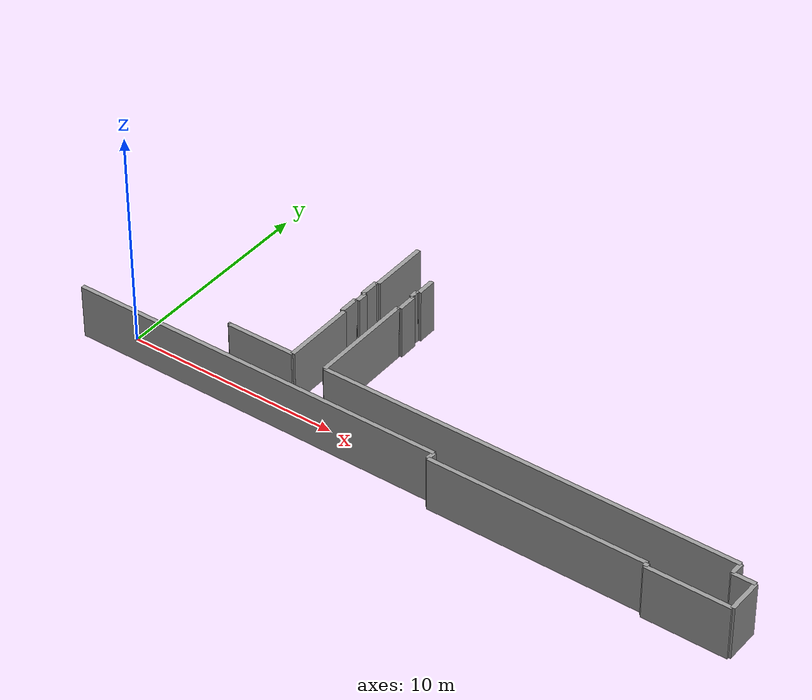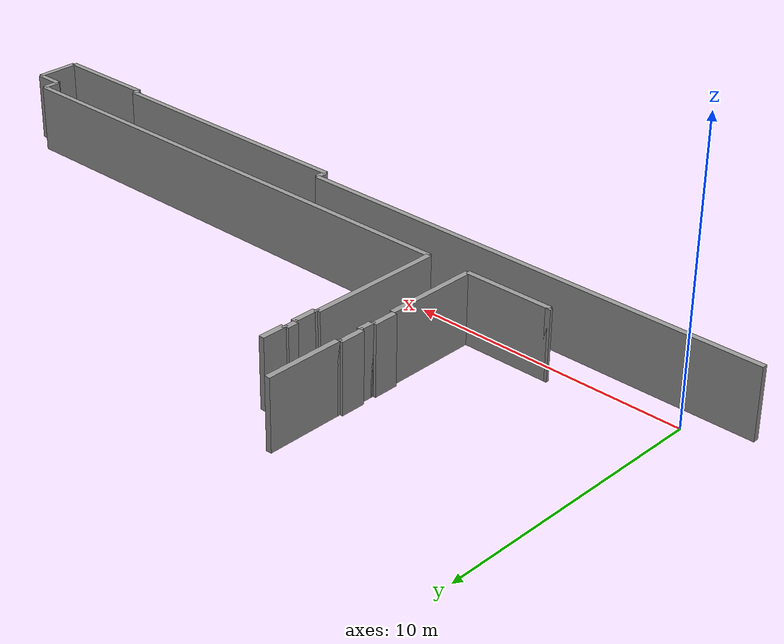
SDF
<sdf version="1.4">
 <model name="Levine">
  <link name="Wall_20">
   <collision name="Wall_20_Collision">
    <geometry><box><size>4.9 0.2 2.5</size></box></geometry>
    <pose>0 0 1.25 0 0 0</pose>
   </collision>
   <visual name="Wall_20_Visual">
    <pose>0 0 1.25 0 0 0</pose>
    <geometry><box><size>4.9 0.2 2.5</size></box></geometry>
    <material>
     <script><uri>file://media/materials/scripts/gazebo.material</uri><name>Gazebo/Grey</name></script>
    </material>
   </visual>
   <velocity_decay><linear>0</linear><angular>0</angular></velocity_decay>
   <pose>9.3 3.05 0 0 0 1.57079632679</pose>
  </link>
  <link name="Wall_21">
   <collision name="Wall_21_Collision">
    <geometry><box><size>0.1 0.2 2.5</size></box></geometry>
    <pose>0 0 1.25 0 0 0</pose>
   </collision>
   <visual name="Wall_21_Visual">
    <pose>0 0 1.25 0 0 0</pose>
    <geometry><box><size>0.1 0.2 2.5</size></box></geometry>
    <material>
     <script><uri>file://media/materials/scripts/gazebo.material</uri><name>Gazebo/Grey</name></script>
    </material>
   </visual>
   <velocity_decay><linear>0</linear><angular>0</angular></velocity_decay>
   <pose>9.35 5.5 0 0 0 0.0</pose>
  </link>
  <link name="Wall_22">
   <collision name="Wall_22_Collision">
    <geometry><box><size>0.9 0.2 2.5</size></box></geometry>
    <pose>0 0 1.25 0 0 0</pose>
   </collision>
   <visual name="Wall_22_Visual">
    <pose>0 0 1.25 0 0 0</pose>
    <geometry><box><size>0.9 0.2 2.5</size></box></geometry>
    <material>
     <script><uri>file://media/materials/scripts/gazebo.material</uri><name>Gazebo/Grey</name></script>
    </material>
   </visual>
   <velocity_decay><linear>0</linear><angular>0</angular></velocity_decay>
   <pose>9.4 5.95 0 0 0 1.57079632679</pose>
  </link>
  <link name="Wall_23">
   <collision name="Wall_23_Collision">
    <geometry><box><size>0.1 0.2 2.5</size></box></geometry>
    <pose>0 0 1.25 0 0 0</pose>
   </collision>
   <visual name="Wall_23_Visual">
    <pose>0 0 1.25 0 0 0</pose>
    <geometry><box><size>0.1 0.2 2.5</size></box></geometry>
    <material>
     <script><uri>file://media/materials/scripts/gazebo.material</uri><name>Gazebo/Grey</name></script>
    </material>
   </visual>
   <velocity_decay><linear>0</linear><angular>0</angular></velocity_decay>
   <pose>9.35 6.4 0 0 0 3.14159265359</pose>
  </link>
  <link name="Wall_24">
   <collision name="Wall_24_Collision">
    <geometry><box><size>0.4 0.2 2.5</size></box></geometry>
    <pose>0 0 1.25 0 0 0</pose>
   </collision>
   <visual name="Wall_24_Visual">
    <pose>0 0 1.25 0 0 0</pose>
    <geometry><box><size>0.4 0.2 2.5</size></box></geometry>
    <material>
     <script><uri>file://media/materials/scripts/gazebo.material</uri><name>Gazebo/Grey</name></script>
    </material>
   </visual>
   <velocity_decay><linear>0</linear><angular>0</angular></velocity_decay>
   <pose>9.3 6.6 0 0 0 1.57079632679</pose>
  </link>
  <link name="Wall_25">
   <collision name="Wall_25_Collision">
    <geometry><box><size>0.1 0.2 2.5</size></box></geometry>
    <pose>0 0 1.25 0 0 0</pose>
   </collision>
   <visual name="Wall_25_Visual">
    <pose>0 0 1.25 0 0 0</pose>
    <geometry><box><size>0.1 0.2 2.5</size></box></geometry>
    <material>
     <script><uri>file://media/materials/scripts/gazebo.material</uri><name>Gazebo/Grey</name></script>
    </material>
   </visual>
   <velocity_decay><linear>0</linear><angular>0</angular></velocity_decay>
   <pose>9.35 6.8 0 0 0 0.0</pose>
  </link>
  <link name="Wall_26">
   <collision name="Wall_26_Collision">
    <geometry><box><size>0.9 0.2 2.5</size></box></geometry>
    <pose>0 0 1.25 0 0 0</pose>
   </collision>
   <visual name="Wall_26_Visual">
    <pose>0 0 1.25 0 0 0</pose>
    <geometry><box><size>0.9 0.2 2.5</size></box></geometry>
    <material>
     <script><uri>file://media/materials/scripts/gazebo.material</uri><name>Gazebo/Grey</name></script>
    </material>
   </visual>
   <velocity_decay><linear>0</linear><angular>0</angular></velocity_decay>
   <pose>9.4 7.25 0 0 0 1.57079632679</pose>
  </link>
  <link name="Wall_47">
   <collision name="Wall_47_Collision">
    <geometry><box><size>17.7 0.2 2.5</size></box></geometry>
    <pose>0 0 1.25 0 0 0</pose>
   </collision>
   <visual name="Wall_47_Visual">
    <pose>0 0 1.25 0 0 0</pose>
    <geometry><box><size>17.7 0.2 2.5</size></box></geometry>
    <material>
     <script><uri>file://media/materials/scripts/gazebo.material</uri><name>Gazebo/Grey</name></script>
    </material>
   </visual>
   <velocity_decay><linear>0</linear><angular>0</angular></velocity_decay>
   <pose>6.95 -1.0 0 0 0 0.0</pose>
  </link>
  <link name="Wall_48">
   <collision name="Wall_48_Collision">
    <geometry><box><size>0.4 0.2 2.5</size></box></geometry>
    <pose>0 0 1.25 0 0 0</pose>
   </collision>
   <visual name="Wall_48_Visual">
    <pose>0 0 1.25 0 0 0</pose>
    <geometry><box><size>0.4 0.2 2.5</size></box></geometry>
    <material>
     <script><uri>file://media/materials/scripts/gazebo.material</uri><name>Gazebo/Grey</name></script>
    </material>
   </visual>
   <velocity_decay><linear>0</linear><angular>0</angular></velocity_decay>
   <pose>15.8 -1.2 0 0 0 -1.57079632679</pose>
  </link>
  <link name="Wall_49">
   <collision name="Wall_49_Collision">
    <geometry><box><size>10.0 0.2 2.5</size></box></geometry>
    <pose>0 0 1.25 0 0 0</pose>
   </collision>
   <visual name="Wall_49_Visual">
    <pose>0 0 1.25 0 0 0</pose>
    <geometry><box><size>10.0 0.2 2.5</size></box></geometry>
    <material>
     <script><uri>file://media/materials/scripts/gazebo.material</uri><name>Gazebo/Grey</name></script>
    </material>
   </visual>
   <velocity_decay><linear>0</linear><angular>0</angular></velocity_decay>
   <pose>20.8 -1.4 0 0 0 0.0</pose>
  </link>
  <link name="Wall_50">
   <collision name="Wall_50_Collision">
    <geometry><box><size>0.2 0.2 2.5</size></box></geometry>
    <pose>0 0 1.25 0 0 0</pose>
   </collision>
   <visual name="Wall_50_Visual">
    <pose>0 0 1.25 0 0 0</pose>
    <geometry><box><size>0.2 0.2 2.5</size></box></geometry>
    <material>
     <script><uri>file://media/materials/scripts/gazebo.material</uri><name>Gazebo/Grey</name></script>
    </material>
   </visual>
   <velocity_decay><linear>0</linear><angular>0</angular></velocity_decay>
   <pose>25.8 -1.5 0 0 0 -1.57079632679</pose>
  </link>
  <link name="Wall_51">
   <collision name="Wall_51_Collision">
    <geometry><box><size>3.8 0.2 2.5</size></box></geometry>
    <pose>0 0 1.25 0 0 0</pose>
   </collision>
   <visual name="Wall_51_Visual">
    <pose>0 0 1.25 0 0 0</pose>
    <geometry><box><size>3.8 0.2 2.5</size></box></geometry>
    <material>
     <script><uri>file://media/materials/scripts/gazebo.material</uri><name>Gazebo/Grey</name></script>
    </material>
   </visual>
   <velocity_decay><linear>0</linear><angular>0</angular></velocity_decay>
   <pose>27.7 -1.6 0 0 0 0.0</pose>
  </link>
  <link name="Wall_52">
   <collision name="Wall_52_Collision">
    <geometry><box><size>1.6 0.2 2.5</size></box></geometry>
    <pose>0 0 1.25 0 0 0</pose>
   </collision>
   <visual name="Wall_52_Visual">
    <pose>0 0 1.25 0 0 0</pose>
    <geometry><box><size>1.6 0.2 2.5</size></box></geometry>
    <material>
     <script><uri>file://media/materials/scripts/gazebo.material</uri><name>Gazebo/Grey</name></script>
    </material>
   </visual>
   <velocity_decay><linear>0</linear><angular>0</angular></velocity_decay>
   <pose>29.6 -0.8 0 0 0 1.57079632679</pose>
  </link>
  <link name="Wall_53">
   <collision name="Wall_53_Collision">
    <geometry><box><size>1.0 0.2 2.5</size></box></geometry>
    <pose>0 0 1.25 0 0 0</pose>
   </collision>
   <visual name="Wall_53_Visual">
    <pose>0 0 1.25 0 0 0</pose>
    <geometry><box><size>1.0 0.2 2.5</size></box></geometry>
    <material>
     <script><uri>file://media/materials/scripts/gazebo.material</uri><name>Gazebo/Grey</name></script>
    </material>
   </visual>
   <velocity_decay><linear>0</linear><angular>0</angular></velocity_decay>
   <pose>29.1 0.0 0 0 0 3.14159265359</pose>
  </link>
  <link name="Wall_54">
   <collision name="Wall_54_Collision">
    <geometry><box><size>0.6 0.2 2.5</size></box></geometry>
    <pose>0 0 1.25 0 0 0</pose>
   </collision>
   <visual name="Wall_54_Visual">
    <pose>0 0 1.25 0 0 0</pose>
    <geometry><box><size>0.6 0.2 2.5</size></box></geometry>
    <material>
     <script><uri>file://media/materials/scripts/gazebo.material</uri><name>Gazebo/Grey</name></script>
    </material>
   </visual>
   <velocity_decay><linear>0</linear><angular>0</angular></velocity_decay>
   <pose>28.6 0.3 0 0 0 1.57079632679</pose>
  </link>
  <link name="Wall_55">
   <collision name="Wall_55_Collision">
    <geometry><box><size>19.3 0.2 2.5</size></box></geometry>
    <pose>0 0 1.25 0 0 0</pose>
   </collision>
   <visual name="Wall_55_Visual">
    <pose>0 0 1.25 0 0 0</pose>
    <geometry><box><size>19.3 0.2 2.5</size></box></geometry>
    <material>
     <script><uri>file://media/materials/scripts/gazebo.material</uri><name>Gazebo/Grey</name></script>
    </material>
   </visual>
   <velocity_decay><linear>0</linear><angular>0</angular></velocity_decay>
   <pose>18.95 0.6 0 0 0 3.14159265359</pose>
  </link>
  <link name="Wall_70">
   <collision name="Wall_70_Collision">
    <geometry><box><size>2.8 0.2 2.5</size></box></geometry>
    <pose>0 0 1.25 0 0 0</pose>
   </collision>
   <visual name="Wall_70_Visual">
    <pose>0 0 1.25 0 0 0</pose>
    <geometry><box><size>2.8 0.2 2.5</size></box></geometry>
    <material>
     <script><uri>file://media/materials/scripts/gazebo.material</uri><name>Gazebo/Grey</name></script>
    </material>
   </visual>
   <velocity_decay><linear>0</linear><angular>0</angular></velocity_decay>
   <pose>7.7 7.7 0 0 0 -1.57079632679</pose>
  </link>
  <link name="Wall_71">
   <collision name="Wall_71_Collision">
    <geometry><box><size>0.1 0.2 2.5</size></box></geometry>
    <pose>0 0 1.25 0 0 0</pose>
   </collision>
   <visual name="Wall_71_Visual">
    <pose>0 0 1.25 0 0 0</pose>
    <geometry><box><size>0.1 0.2 2.5</size></box></geometry>
    <material>
     <script><uri>file://media/materials/scripts/gazebo.material</uri><name>Gazebo/Grey</name></script>
    </material>
   </visual>
   <velocity_decay><linear>0</linear><angular>0</angular></velocity_decay>
   <pose>7.65 6.3 0 0 0 3.14159265359</pose>
  </link>
  <link name="Wall_72">
   <collision name="Wall_72_Collision">
    <geometry><box><size>0.9 0.2 2.5</size></box></geometry>
    <pose>0 0 1.25 0 0 0</pose>
   </collision>
   <visual name="Wall_72_Visual">
    <pose>0 0 1.25 0 0 0</pose>
    <geometry><box><size>0.9 0.2 2.5</size></box></geometry>
    <material>
     <script><uri>file://media/materials/scripts/gazebo.material</uri><name>Gazebo/Grey</name></script>
    </material>
   </visual>
   <velocity_decay><linear>0</linear><angular>0</angular></velocity_decay>
   <pose>7.6 5.85 0 0 0 -1.57079632679</pose>
  </link>
  <link name="Wall_73">
   <collision name="Wall_73_Collision">
    <geometry><box><size>0.1 0.2 2.5</size></box></geometry>
    <pose>0 0 1.25 0 0 0</pose>
   </collision>
   <visual name="Wall_73_Visual">
    <pose>0 0 1.25 0 0 0</pose>
    <geometry><box><size>0.1 0.2 2.5</size></box></geometry>
    <material>
     <script><uri>file://media/materials/scripts/gazebo.material</uri><name>Gazebo/Grey</name></script>
    </material>
   </visual>
   <velocity_decay><linear>0</linear><angular>0</angular></velocity_decay>
   <pose>7.65 5.4 0 0 0 0.0</pose>
  </link>
  <link name="Wall_74">
   <collision name="Wall_74_Collision">
    <geometry><box><size>0.5 0.2 2.5</size></box></geometry>
    <pose>0 0 1.25 0 0 0</pose>
   </collision>
   <visual name="Wall_74_Visual">
    <pose>0 0 1.25 0 0 0</pose>
    <geometry><box><size>0.5 0.2 2.5</size></box></geometry>
    <material>
     <script><uri>file://media/materials/scripts/gazebo.material</uri><name>Gazebo/Grey</name></script>
    </material>
   </visual>
   <velocity_decay><linear>0</linear><angular>0</angular></velocity_decay>
   <pose>7.7 5.15 0 0 0 -1.57079632679</pose>
  </link>
  <link name="Wall_75">
   <collision name="Wall_75_Collision">
    <geometry><box><size>0.1 0.2 2.5</size></box></geometry>
    <pose>0 0 1.25 0 0 0</pose>
   </collision>
   <visual name="Wall_75_Visual">
    <pose>0 0 1.25 0 0 0</pose>
    <geometry><box><size>0.1 0.2 2.5</size></box></geometry>
    <material>
     <script><uri>file://media/materials/scripts/gazebo.material</uri><name>Gazebo/Grey</name></script>
    </material>
   </visual>
   <velocity_decay><linear>0</linear><angular>0</angular></velocity_decay>
   <pose>7.65 4.9 0 0 0 3.14159265359</pose>
  </link>
  <link name="Wall_76">
   <collision name="Wall_76_Collision">
    <geometry><box><size>0.9 0.2 2.5</size></box></geometry>
    <pose>0 0 1.25 0 0 0</pose>
   </collision>
   <visual name="Wall_76_Visual">
    <pose>0 0 1.25 0 0 0</pose>
    <geometry><box><size>0.9 0.2 2.5</size></box></geometry>
    <material>
     <script><uri>file://media/materials/scripts/gazebo.material</uri><name>Gazebo/Grey</name></script>
    </material>
   </visual>
   <velocity_decay><linear>0</linear><angular>0</angular></velocity_decay>
   <pose>7.6 4.45 0 0 0 -1.57079632679</pose>
  </link>
  <link name="Wall_77">
   <collision name="Wall_77_Collision">
    <geometry><box><size>0.1 0.2 2.5</size></box></geometry>
    <pose>0 0 1.25 0 0 0</pose>
   </collision>
   <visual name="Wall_77_Visual">
    <pose>0 0 1.25 0 0 0</pose>
    <geometry><box><size>0.1 0.2 2.5</size></box></geometry>
    <material>
     <script><uri>file://media/materials/scripts/gazebo.material</uri><name>Gazebo/Grey</name></script>
    </material>
   </visual>
   <velocity_decay><linear>0</linear><angular>0</angular></velocity_decay>
   <pose>7.65 4.0 0 0 0 0.0</pose>
  </link>
  <link name="Wall_78">
   <collision name="Wall_78_Collision">
    <geometry><box><size>3.4 0.2 2.5</size></box></geometry>
    <pose>0 0 1.25 0 0 0</pose>
   </collision>
   <visual name="Wall_78_Visual">
    <pose>0 0 1.25 0 0 0</pose>
    <geometry><box><size>3.4 0.2 2.5</size></box></geometry>
    <material>
     <script><uri>file://media/materials/scripts/gazebo.material</uri><name>Gazebo/Grey</name></script>
    </material>
   </visual>
   <velocity_decay><linear>0</linear><angular>0</angular></velocity_decay>
   <pose>7.7 2.3 0 0 0 -1.57079632679</pose>
  </link>
  <link name="Wall_79">
   <collision name="Wall_79_Collision">
    <geometry><box><size>3.2 0.2 2.5</size></box></geometry>
    <pose>0 0 1.25 0 0 0</pose>
   </collision>
   <visual name="Wall_79_Visual">
    <pose>0 0 1.25 0 0 0</pose>
    <geometry><box><size>3.2 0.2 2.5</size></box></geometry>
    <material>
     <script><uri>file://media/materials/scripts/gazebo.material</uri><name>Gazebo/Grey</name></script>
    </material>
   </visual>
   <velocity_decay><linear>0</linear><angular>0</angular></velocity_decay>
   <pose>6.1 0.6 0 0 0 3.14159265359</pose>
  </link>
  <link name="Wall_80">
   <collision name="Wall_80_Collision">
    <geometry><box><size>0.1 0.2 2.5</size></box></geometry>
    <pose>0 0 1.25 0 0 0</pose>
   </collision>
   <visual name="Wall_80_Visual">
    <pose>0 0 1.25 0 0 0</pose>
    <geometry><box><size>0.1 0.2 2.5</size></box></geometry>
    <material>
     <script><uri>file://media/materials/scripts/gazebo.material</uri><name>Gazebo/Grey</name></script>
    </material>
   </visual>
   <velocity_decay><linear>0</linear><angular>0</angular></velocity_decay>
   <pose>4.5 0.65 0 0 0 1.57079632679</pose>
  </link>
  <static>1</static>
 </model>
</sdf>
